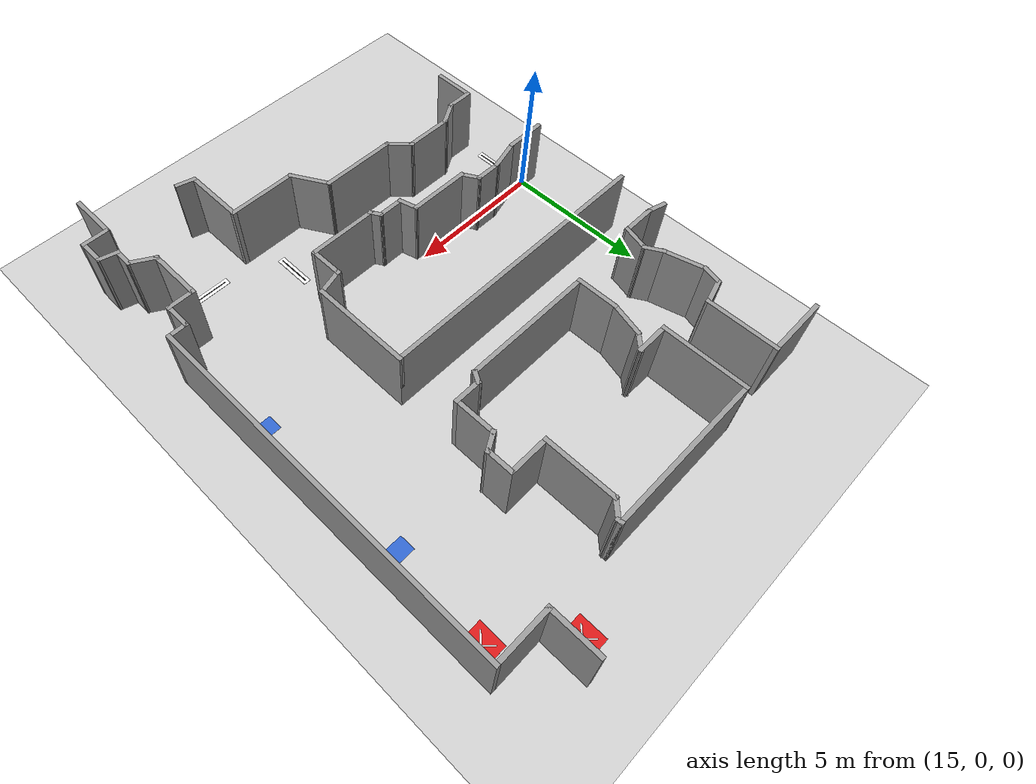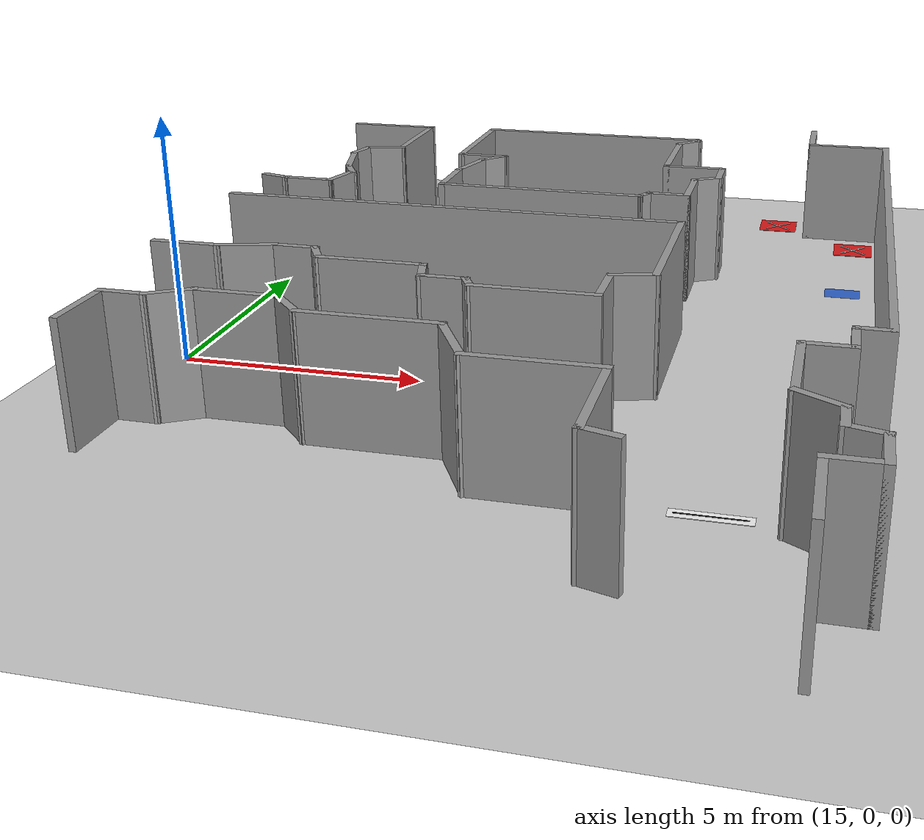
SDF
<sdf version="1.7">
 <world name="default">
  <model name="ground_plane">
   <static>1</static>
   <link name="link">
    <collision name="collision">
     <geometry><plane><normal>0 0 1</normal><size>100 100</size></plane></geometry>
     <surface>
      <contact><collide_bitmask>65535</collide_bitmask></contact>
      <friction><ode><mu>100</mu><mu2>50</mu2></ode></friction>
     </surface>
    </collision>
    <visual name="visual">
     <cast_shadows>0</cast_shadows>
     <geometry><plane><normal>0 0 1</normal><size>100 100</size></plane></geometry>
     <material>
      <script><uri>file://media/materials/scripts/gazebo.material</uri><name>Gazebo/Grey</name></script>
     </material>
    </visual>
   </link>
  </model>
  <model name="latest_world">
   <pose>-1.4911 -0.096187 0 0 -0 0</pose>
   <link name="Wall_10">
    <collision name="Wall_10_Collision">
     <geometry><box><size>1 0.15 2.5</size></box></geometry>
     <pose>0 0 1.25 0 -0 0</pose>
    </collision>
    <visual name="Wall_10_Visual">
     <pose>0 0 1.25 0 -0 0</pose>
     <geometry><box><size>1 0.15 2.5</size></box></geometry>
     <material>
      <script><uri>file://media/materials/scripts/gazebo.material</uri><name>Gazebo/Grey</name></script>
      <ambient>1 1 1 1</ambient>
     </material>
     <meta><layer>0</layer></meta>
    </visual>
    <pose>29.1732 -4.44675 0 0 -0 -0.523599</pose>
   </link>
   <link name="Wall_11">
    <collision name="Wall_11_Collision">
     <geometry><box><size>0.75 0.15 2.5</size></box></geometry>
     <pose>0 0 1.25 0 -0 0</pose>
    </collision>
    <visual name="Wall_11_Visual">
     <pose>0 0 1.25 0 -0 0</pose>
     <geometry><box><size>0.75 0.15 2.5</size></box></geometry>
     <material>
      <script><uri>file://media/materials/scripts/gazebo.material</uri><name>Gazebo/Grey</name></script>
      <ambient>1 1 1 1</ambient>
     </material>
     <meta><layer>0</layer></meta>
    </visual>
    <pose>29.5412 -4.95925 0 0 -0 -1.5708</pose>
   </link>
   <link name="Wall_12">
    <collision name="Wall_12_Collision">
     <geometry><box><size>0.75 0.15 2.5</size></box></geometry>
     <pose>0 0 1.25 0 -0 0</pose>
    </collision>
    <visual name="Wall_12_Visual">
     <pose>0 0 1.25 0 -0 0</pose>
     <geometry><box><size>0.75 0.15 2.5</size></box></geometry>
     <material>
      <script><uri>file://media/materials/scripts/gazebo.material</uri><name>Gazebo/Grey</name></script>
      <ambient>1 1 1 1</ambient>
     </material>
     <meta><layer>0</layer></meta>
    </visual>
    <pose>29.831 -5.3369 0 0 -0 -0.261799</pose>
   </link>
   <link name="Wall_13">
    <collision name="Wall_13_Collision">
     <geometry><box><size>1 0.15 2.5</size></box></geometry>
     <pose>0 0 1.25 0 -0 0</pose>
    </collision>
    <visual name="Wall_13_Visual">
     <pose>0 0 1.25 0 -0 0</pose>
     <geometry><box><size>1 0.15 2.5</size></box></geometry>
     <material>
      <script><uri>file://media/materials/scripts/gazebo.material</uri><name>Gazebo/Grey</name></script>
      <ambient>1 1 1 1</ambient>
     </material>
     <meta><layer>0</layer></meta>
    </visual>
    <pose>30.1208 -5.83954 0 0 -0 -1.5708</pose>
   </link>
   <link name="Wall_14">
    <collision name="Wall_14_Collision">
     <geometry><box><size>1 0.15 2.5</size></box></geometry>
     <pose>0 0 1.25 0 -0 0</pose>
    </collision>
    <visual name="Wall_14_Visual">
     <pose>0 0 1.25 0 -0 0</pose>
     <geometry><box><size>1 0.15 2.5</size></box></geometry>
     <material>
      <script><uri>file://media/materials/scripts/gazebo.material</uri><name>Gazebo/Grey</name></script>
      <ambient>1 1 1 1</ambient>
     </material>
     <meta><layer>0</layer></meta>
    </visual>
    <pose>29.6958 -6.26454 0 0 -0 3.14159</pose>
   </link>
   <link name="Wall_15">
    <collision name="Wall_15_Collision">
     <geometry><box><size>1.75 0.15 2.5</size></box></geometry>
     <pose>0 0 1.25 0 -0 0</pose>
    </collision>
    <visual name="Wall_15_Visual">
     <pose>0 0 1.25 0 -0 0</pose>
     <geometry><box><size>1.75 0.15 2.5</size></box></geometry>
     <material>
      <script><uri>file://media/materials/scripts/gazebo.material</uri><name>Gazebo/Grey</name></script>
      <ambient>1 1 1 1</ambient>
     </material>
     <meta><layer>0</layer></meta>
    </visual>
    <pose>29.2708 -7.06454 0 0 -0 -1.5708</pose>
   </link>
   <link name="Wall_3">
    <collision name="Wall_3_Collision">
     <geometry><box><size>1.75 0.15 2.5</size></box></geometry>
     <pose>0 0 1.25 0 -0 0</pose>
    </collision>
    <visual name="Wall_3_Visual">
     <pose>0 0 1.25 0 -0 0</pose>
     <geometry><box><size>1.75 0.15 2.5</size></box></geometry>
     <material>
      <script><uri>file://media/materials/scripts/gazebo.material</uri><name>Gazebo/Grey</name></script>
      <ambient>1 1 1 1</ambient>
     </material>
     <meta><layer>0</layer></meta>
    </visual>
    <pose>28.4051 12.1157 0 0 -0 -1.5708</pose>
   </link>
   <link name="Wall_359">
    <collision name="Wall_359_Collision">
     <geometry><box><size>0.75 0.15 2.5</size></box></geometry>
     <pose>0 0 1.25 0 -0 0</pose>
    </collision>
    <visual name="Wall_359_Visual">
     <pose>0 0 1.25 0 -0 0</pose>
     <geometry><box><size>0.75 0.15 2.5</size></box></geometry>
     <material>
      <script><uri>file://media/materials/scripts/gazebo.material</uri><name>Gazebo/Grey</name></script>
      <ambient>1 1 1 1</ambient>
     </material>
     <meta><layer>0</layer></meta>
    </visual>
    <pose>16.2347 5.35009 0 0 -0 -0.261799</pose>
   </link>
   <link name="Wall_360">
    <collision name="Wall_360_Collision">
     <geometry><box><size>1.25 0.15 2.5</size></box></geometry>
     <pose>0 0 1.25 0 -0 0</pose>
    </collision>
    <visual name="Wall_360_Visual">
     <pose>0 0 1.25 0 -0 0</pose>
     <geometry><box><size>1.25 0.15 2.5</size></box></geometry>
     <material>
      <script><uri>file://media/materials/scripts/gazebo.material</uri><name>Gazebo/Grey</name></script>
      <ambient>1 1 1 1</ambient>
     </material>
     <meta><layer>0</layer></meta>
    </visual>
    <pose>17.0744 5.27244 0 0 -0 0</pose>
   </link>
   <link name="Wall_361">
    <collision name="Wall_361_Collision">
     <geometry><box><size>1 0.15 2.5</size></box></geometry>
     <pose>0 0 1.25 0 -0 0</pose>
    </collision>
    <visual name="Wall_361_Visual">
     <pose>0 0 1.25 0 -0 0</pose>
     <geometry><box><size>1 0.15 2.5</size></box></geometry>
     <material>
      <script><uri>file://media/materials/scripts/gazebo.material</uri><name>Gazebo/Grey</name></script>
      <ambient>1 1 1 1</ambient>
     </material>
     <meta><layer>0</layer></meta>
    </visual>
    <pose>17.7344 5.68296 0 0 -0 1.309</pose>
   </link>
   <link name="Wall_362">
    <collision name="Wall_362_Collision">
     <geometry><box><size>0.75 0.15 2.5</size></box></geometry>
     <pose>0 0 1.25 0 -0 0</pose>
    </collision>
    <visual name="Wall_362_Visual">
     <pose>0 0 1.25 0 -0 0</pose>
     <geometry><box><size>0.75 0.15 2.5</size></box></geometry>
     <material>
      <script><uri>file://media/materials/scripts/gazebo.material</uri><name>Gazebo/Grey</name></script>
      <ambient>1 1 1 1</ambient>
     </material>
     <meta><layer>0</layer></meta>
    </visual>
    <pose>17.6944 6.35329 0 0 -0 2.0944</pose>
   </link>
   <link name="Wall_363">
    <collision name="Wall_363_Collision">
     <geometry><box><size>1.5 0.15 2.5</size></box></geometry>
     <pose>0 0 1.25 0 -0 0</pose>
    </collision>
    <visual name="Wall_363_Visual">
     <pose>0 0 1.25 0 -0 0</pose>
     <geometry><box><size>1.5 0.15 2.5</size></box></geometry>
     <material>
      <script><uri>file://media/materials/scripts/gazebo.material</uri><name>Gazebo/Grey</name></script>
      <ambient>1 1 1 1</ambient>
     </material>
     <meta><layer>0</layer></meta>
    </visual>
    <pose>17.3697 7.26509 0 0 -0 1.8326</pose>
   </link>
   <link name="Wall_364">
    <collision name="Wall_364_Collision">
     <geometry><box><size>0.75 0.15 2.5</size></box></geometry>
     <pose>0 0 1.25 0 -0 0</pose>
    </collision>
    <visual name="Wall_364_Visual">
     <pose>0 0 1.25 0 -0 0</pose>
     <geometry><box><size>0.75 0.15 2.5</size></box></geometry>
     <material>
      <script><uri>file://media/materials/scripts/gazebo.material</uri><name>Gazebo/Grey</name></script>
      <ambient>1 1 1 1</ambient>
     </material>
     <meta><layer>0</layer></meta>
    </visual>
    <pose>17.2727 8.20687 0 0 -0 1.309</pose>
   </link>
   <link name="Wall_365">
    <collision name="Wall_365_Collision">
     <geometry><box><size>1 0.15 2.5</size></box></geometry>
     <pose>0 0 1.25 0 -0 0</pose>
    </collision>
    <visual name="Wall_365_Visual">
     <pose>0 0 1.25 0 -0 0</pose>
     <geometry><box><size>1 0.15 2.5</size></box></geometry>
     <material>
      <script><uri>file://media/materials/scripts/gazebo.material</uri><name>Gazebo/Grey</name></script>
      <ambient>1 1 1 1</ambient>
     </material>
     <meta><layer>0</layer></meta>
    </visual>
    <pose>17.7608 8.60665 0 0 -0 0.261799</pose>
   </link>
   <link name="Wall_366">
    <collision name="Wall_366_Collision">
     <geometry><box><size>2.5 0.15 2.5</size></box></geometry>
     <pose>0 0 1.25 0 -0 0</pose>
    </collision>
    <visual name="Wall_366_Visual">
     <pose>0 0 1.25 0 -0 0</pose>
     <geometry><box><size>2.5 0.15 2.5</size></box></geometry>
     <material>
      <script><uri>file://media/materials/scripts/gazebo.material</uri><name>Gazebo/Grey</name></script>
      <ambient>1 1 1 1</ambient>
     </material>
     <meta><layer>0</layer></meta>
    </visual>
    <pose>18.1713 9.89165 0 0 -0 1.5708</pose>
   </link>
   <link name="Wall_367">
    <collision name="Wall_367_Collision">
     <geometry><box><size>2.25 0.15 2.5</size></box></geometry>
     <pose>0 0 1.25 0 -0 0</pose>
    </collision>
    <visual name="Wall_367_Visual">
     <pose>0 0 1.25 0 -0 0</pose>
     <geometry><box><size>2.25 0.15 2.5</size></box></geometry>
     <material>
      <script><uri>file://media/materials/scripts/gazebo.material</uri><name>Gazebo/Grey</name></script>
      <ambient>1 1 1 1</ambient>
     </material>
     <meta><layer>0</layer></meta>
    </visual>
    <pose>17.1213 11.0666 0 0 -0 3.14159</pose>
   </link>
   <link name="Wall_372">
    <collision name="Wall_372_Collision">
     <geometry><box><size>5.75 0.15 2.5</size></box></geometry>
     <pose>0 0 1.25 0 -0 0</pose>
    </collision>
    <visual name="Wall_372_Visual">
     <pose>0 0 1.25 0 -0 0</pose>
     <geometry><box><size>5.75 0.15 2.5</size></box></geometry>
     <material>
      <script><uri>file://media/materials/scripts/gazebo.material</uri><name>Gazebo/Grey</name></script>
      <ambient>1 1 1 1</ambient>
     </material>
     <meta><layer>0</layer></meta>
    </visual>
    <pose>22.6914 11.1934 0 0 -0 0</pose>
   </link>
   <link name="Wall_373">
    <collision name="Wall_373_Collision">
     <geometry><box><size>0.25 0.15 2.5</size></box></geometry>
     <pose>0 0 1.25 0 -0 0</pose>
    </collision>
    <visual name="Wall_373_Visual">
     <pose>0 0 1.25 0 -0 0</pose>
     <geometry><box><size>0.25 0.15 2.5</size></box></geometry>
     <material>
      <script><uri>file://media/materials/scripts/gazebo.material</uri><name>Gazebo/Grey</name></script>
      <ambient>1 1 1 1</ambient>
     </material>
     <meta><layer>0</layer></meta>
    </visual>
    <pose>25.4914 11.1434 0 0 -0 -1.5708</pose>
   </link>
   <link name="Wall_374">
    <collision name="Wall_374_Collision">
     <geometry><box><size>0.75 0.15 2.5</size></box></geometry>
     <pose>0 0 1.25 0 -0 0</pose>
    </collision>
    <visual name="Wall_374_Visual">
     <pose>0 0 1.25 0 -0 0</pose>
     <geometry><box><size>0.75 0.15 2.5</size></box></geometry>
     <material>
      <script><uri>file://media/materials/scripts/gazebo.material</uri><name>Gazebo/Grey</name></script>
      <ambient>1 1 1 1</ambient>
     </material>
     <meta><layer>0</layer></meta>
    </visual>
    <pose>25.2792 10.8813 0 0 -0 -2.35619</pose>
   </link>
   <link name="Wall_375">
    <collision name="Wall_375_Collision">
     <geometry><box><size>2.5 0.15 2.5</size></box></geometry>
     <pose>0 0 1.25 0 -0 0</pose>
    </collision>
    <visual name="Wall_375_Visual">
     <pose>0 0 1.25 0 -0 0</pose>
     <geometry><box><size>2.5 0.15 2.5</size></box></geometry>
     <material>
      <script><uri>file://media/materials/scripts/gazebo.material</uri><name>Gazebo/Grey</name></script>
      <ambient>1 1 1 1</ambient>
     </material>
     <meta><layer>0</layer></meta>
    </visual>
    <pose>25.0671 9.49415 0 0 -0 -1.5708</pose>
   </link>
   <link name="Wall_376">
    <collision name="Wall_376_Collision">
     <geometry><box><size>1.5 0.15 2.5</size></box></geometry>
     <pose>0 0 1.25 0 -0 0</pose>
    </collision>
    <visual name="Wall_376_Visual">
     <pose>0 0 1.25 0 -0 0</pose>
     <geometry><box><size>1.5 0.15 2.5</size></box></geometry>
     <material>
      <script><uri>file://media/materials/scripts/gazebo.material</uri><name>Gazebo/Grey</name></script>
      <ambient>1 1 1 1</ambient>
     </material>
     <meta><layer>0</layer></meta>
    </visual>
    <pose>25.7421 8.31915 0 0 -0 0</pose>
   </link>
   <link name="Wall_377">
    <collision name="Wall_377_Collision">
     <geometry><box><size>1 0.15 2.5</size></box></geometry>
     <pose>0 0 1.25 0 -0 0</pose>
    </collision>
    <visual name="Wall_377_Visual">
     <pose>0 0 1.25 0 -0 0</pose>
     <geometry><box><size>1 0.15 2.5</size></box></geometry>
     <material>
      <script><uri>file://media/materials/scripts/gazebo.material</uri><name>Gazebo/Grey</name></script>
      <ambient>1 1 1 1</ambient>
     </material>
     <meta><layer>0</layer></meta>
    </visual>
    <pose>26.4171 7.89415 0 0 -0 -1.5708</pose>
   </link>
   <link name="Wall_378">
    <collision name="Wall_378_Collision">
     <geometry><box><size>0.75 0.15 2.5</size></box></geometry>
     <pose>0 0 1.25 0 -0 0</pose>
    </collision>
    <visual name="Wall_378_Visual">
     <pose>0 0 1.25 0 -0 0</pose>
     <geometry><box><size>0.75 0.15 2.5</size></box></geometry>
     <material>
      <script><uri>file://media/materials/scripts/gazebo.material</uri><name>Gazebo/Grey</name></script>
      <ambient>1 1 1 1</ambient>
     </material>
     <meta><layer>0</layer></meta>
    </visual>
    <pose>26.1573 7.31915 0 0 -0 -2.61799</pose>
   </link>
   <link name="Wall_379">
    <collision name="Wall_379_Collision">
     <geometry><box><size>1.5 0.15 2.5</size></box></geometry>
     <pose>0 0 1.25 0 -0 0</pose>
    </collision>
    <visual name="Wall_379_Visual">
     <pose>0 0 1.25 0 -0 0</pose>
     <geometry><box><size>1.5 0.15 2.5</size></box></geometry>
     <material>
      <script><uri>file://media/materials/scripts/gazebo.material</uri><name>Gazebo/Grey</name></script>
      <ambient>1 1 1 1</ambient>
     </material>
     <meta><layer>0</layer></meta>
    </visual>
    <pose>25.8975 6.49415 0 0 -0 -1.5708</pose>
   </link>
   <link name="Wall_380">
    <collision name="Wall_380_Collision">
     <geometry><box><size>1 0.15 2.5</size></box></geometry>
     <pose>0 0 1.25 0 -0 0</pose>
    </collision>
    <visual name="Wall_380_Visual">
     <pose>0 0 1.25 0 -0 0</pose>
     <geometry><box><size>1 0.15 2.5</size></box></geometry>
     <material>
      <script><uri>file://media/materials/scripts/gazebo.material</uri><name>Gazebo/Grey</name></script>
      <ambient>1 1 1 1</ambient>
     </material>
     <meta><layer>0</layer></meta>
    </visual>
    <pose>25.4725 5.81915 0 0 -0 3.14159</pose>
   </link>
   <link name="Wall_381">
    <collision name="Wall_381_Collision">
     <geometry><box><size>0.5 0.15 2.5</size></box></geometry>
     <pose>0 0 1.25 0 -0 0</pose>
    </collision>
    <visual name="Wall_381_Visual">
     <pose>0 0 1.25 0 -0 0</pose>
     <geometry><box><size>0.5 0.15 2.5</size></box></geometry>
     <material>
      <script><uri>file://media/materials/scripts/gazebo.material</uri><name>Gazebo/Grey</name></script>
      <ambient>1 1 1 1</ambient>
     </material>
     <meta><layer>0</layer></meta>
    </visual>
    <pose>24.96 5.66759 0 0 -0 -2.0944</pose>
   </link>
   <link name="Wall_382">
    <collision name="Wall_382_Collision">
     <geometry><box><size>4.75 0.15 2.5</size></box></geometry>
     <pose>0 0 1.25 0 -0 0</pose>
    </collision>
    <visual name="Wall_382_Visual">
     <pose>0 0 1.25 0 -0 0</pose>
     <geometry><box><size>4.75 0.15 2.5</size></box></geometry>
     <material>
      <script><uri>file://media/materials/scripts/gazebo.material</uri><name>Gazebo/Grey</name></script>
      <ambient>1 1 1 1</ambient>
     </material>
     <meta><layer>0</layer></meta>
    </visual>
    <pose>22.5725 5.51604 0 0 -0 3.14159</pose>
   </link>
   <link name="Wall_383">
    <collision name="Wall_383_Collision">
     <geometry><box><size>1.5 0.15 2.5</size></box></geometry>
     <pose>0 0 1.25 0 -0 0</pose>
    </collision>
    <visual name="Wall_383_Visual">
     <pose>0 0 1.25 0 -0 0</pose>
     <geometry><box><size>1.5 0.15 2.5</size></box></geometry>
     <material>
      <script><uri>file://media/materials/scripts/gazebo.material</uri><name>Gazebo/Grey</name></script>
      <ambient>1 1 1 1</ambient>
     </material>
     <meta><layer>0</layer></meta>
    </visual>
    <pose>20.2725 6.19104 0 0 -0 1.5708</pose>
   </link>
   <link name="Wall_384">
    <collision name="Wall_384_Collision">
     <geometry><box><size>1.25 0.15 2.5</size></box></geometry>
     <pose>0 0 1.25 0 -0 0</pose>
    </collision>
    <visual name="Wall_384_Visual">
     <pose>0 0 1.25 0 -0 0</pose>
     <geometry><box><size>1.25 0.15 2.5</size></box></geometry>
     <material>
      <script><uri>file://media/materials/scripts/gazebo.material</uri><name>Gazebo/Grey</name></script>
      <ambient>1 1 1 1</ambient>
     </material>
     <meta><layer>0</layer></meta>
    </visual>
    <pose>20.4148 7.3973 0 0 -0 1.309</pose>
   </link>
   <link name="Wall_385">
    <collision name="Wall_385_Collision">
     <geometry><box><size>0.75 0.15 2.5</size></box></geometry>
     <pose>0 0 1.25 0 -0 0</pose>
    </collision>
    <visual name="Wall_385_Visual">
     <pose>0 0 1.25 0 -0 0</pose>
     <geometry><box><size>0.75 0.15 2.5</size></box></geometry>
     <material>
      <script><uri>file://media/materials/scripts/gazebo.material</uri><name>Gazebo/Grey</name></script>
      <ambient>1 1 1 1</ambient>
     </material>
     <meta><layer>0</layer></meta>
    </visual>
    <pose>20.7693 8.14069 0 0 -0 0.785398</pose>
   </link>
   <link name="Wall_386">
    <collision name="Wall_386_Collision">
     <geometry><box><size>1.25 0.15 2.5</size></box></geometry>
     <pose>0 0 1.25 0 -0 0</pose>
    </collision>
    <visual name="Wall_386_Visual">
     <pose>0 0 1.25 0 -0 0</pose>
     <geometry><box><size>1.25 0.15 2.5</size></box></geometry>
     <material>
      <script><uri>file://media/materials/scripts/gazebo.material</uri><name>Gazebo/Grey</name></script>
      <ambient>1 1 1 1</ambient>
     </material>
     <meta><layer>0</layer></meta>
    </visual>
    <pose>20.4314 8.35282 0 0 -0 3.14159</pose>
   </link>
   <link name="Wall_387">
    <collision name="Wall_387_Collision">
     <geometry><box><size>2.99061 0.15 2.5</size></box></geometry>
     <pose>0 0 1.25 0 -0 0</pose>
    </collision>
    <visual name="Wall_387_Visual">
     <pose>0 0 1.25 0 -0 0</pose>
     <geometry><box><size>2.99061 0.15 2.5</size></box></geometry>
     <material>
      <script><uri>file://media/materials/scripts/gazebo.material</uri><name>Gazebo/Grey</name></script>
      <ambient>1 1 1 1</ambient>
     </material>
     <meta><layer>0</layer></meta>
    </visual>
    <pose>19.8864 9.77312 0 0 -0 1.56731</pose>
   </link>
   <link name="Wall_389">
    <collision name="Wall_389_Collision">
     <geometry><box><size>10.25 0.15 2.5</size></box></geometry>
     <pose>0 0 1.25 0 -0 0</pose>
    </collision>
    <visual name="Wall_389_Visual">
     <pose>0 0 1.25 0 -0 0</pose>
     <geometry><box><size>10.25 0.15 2.5</size></box></geometry>
     <material>
      <script><uri>file://media/materials/scripts/gazebo.material</uri><name>Gazebo/Grey</name></script>
      <ambient>1 1 1 1</ambient>
     </material>
     <meta><layer>0</layer></meta>
    </visual>
    <pose>21.0071 3.70224 0 0 -0 0</pose>
   </link>
   <link name="Wall_390">
    <collision name="Wall_390_Collision">
     <geometry><box><size>3.5 0.15 2.5</size></box></geometry>
     <pose>0 0 1.25 0 -0 0</pose>
    </collision>
    <visual name="Wall_390_Visual">
     <pose>0 0 1.25 0 -0 0</pose>
     <geometry><box><size>3.5 0.15 2.5</size></box></geometry>
     <material>
      <script><uri>file://media/materials/scripts/gazebo.material</uri><name>Gazebo/Grey</name></script>
      <ambient>1 1 1 1</ambient>
     </material>
     <meta><layer>0</layer></meta>
    </visual>
    <pose>26.0571 2.02724 0 0 -0 -1.5708</pose>
   </link>
   <link name="Wall_391">
    <collision name="Wall_391_Collision">
     <geometry><box><size>1 0.15 2.5</size></box></geometry>
     <pose>0 0 1.25 0 -0 0</pose>
    </collision>
    <visual name="Wall_391_Visual">
     <pose>0 0 1.25 0 -0 0</pose>
     <geometry><box><size>1 0.15 2.5</size></box></geometry>
     <material>
      <script><uri>file://media/materials/scripts/gazebo.material</uri><name>Gazebo/Grey</name></script>
      <ambient>1 1 1 1</ambient>
     </material>
     <meta><layer>0</layer></meta>
    </visual>
    <pose>25.6466 0.242239 0 0 -0 -2.87979</pose>
   </link>
   <link name="Wall_392">
    <collision name="Wall_392_Collision">
     <geometry><box><size>1.25 0.15 2.5</size></box></geometry>
     <pose>0 0 1.25 0 -0 0</pose>
    </collision>
    <visual name="Wall_392_Visual">
     <pose>0 0 1.25 0 -0 0</pose>
     <geometry><box><size>1.25 0.15 2.5</size></box></geometry>
     <material>
      <script><uri>file://media/materials/scripts/gazebo.material</uri><name>Gazebo/Grey</name></script>
      <ambient>1 1 1 1</ambient>
     </material>
     <meta><layer>0</layer></meta>
    </visual>
    <pose>25.2361 -0.417759 0 0 -0 -1.5708</pose>
   </link>
   <link name="Wall_393">
    <collision name="Wall_393_Collision">
     <geometry><box><size>2.5 0.15 2.5</size></box></geometry>
     <pose>0 0 1.25 0 -0 0</pose>
    </collision>
    <visual name="Wall_393_Visual">
     <pose>0 0 1.25 0 -0 0</pose>
     <geometry><box><size>2.5 0.15 2.5</size></box></geometry>
     <material>
      <script><uri>file://media/materials/scripts/gazebo.material</uri><name>Gazebo/Grey</name></script>
      <ambient>1 1 1 1</ambient>
     </material>
     <meta><layer>0</layer></meta>
    </visual>
    <pose>24.0611 -0.967759 0 0 -0 3.14159</pose>
   </link>
   <link name="Wall_394">
    <collision name="Wall_394_Collision">
     <geometry><box><size>0.5 0.15 2.5</size></box></geometry>
     <pose>0 0 1.25 0 -0 0</pose>
    </collision>
    <visual name="Wall_394_Visual">
     <pose>0 0 1.25 0 -0 0</pose>
     <geometry><box><size>0.5 0.15 2.5</size></box></geometry>
     <material>
      <script><uri>file://media/materials/scripts/gazebo.material</uri><name>Gazebo/Grey</name></script>
      <ambient>1 1 1 1</ambient>
     </material>
     <meta><layer>0</layer></meta>
    </visual>
    <pose>22.7986 -0.816204 0 0 -0 2.0944</pose>
   </link>
   <link name="Wall_395">
    <collision name="Wall_395_Collision">
     <geometry><box><size>1 0.15 2.5</size></box></geometry>
     <pose>0 0 1.25 0 -0 0</pose>
    </collision>
    <visual name="Wall_395_Visual">
     <pose>0 0 1.25 0 -0 0</pose>
     <geometry><box><size>1 0.15 2.5</size></box></geometry>
     <material>
      <script><uri>file://media/materials/scripts/gazebo.material</uri><name>Gazebo/Grey</name></script>
      <ambient>1 1 1 1</ambient>
     </material>
     <meta><layer>0</layer></meta>
    </visual>
    <pose>22.2861 -0.66465 0 0 -0 3.14159</pose>
   </link>
   <link name="Wall_396">
    <collision name="Wall_396_Collision">
     <geometry><box><size>0.75 0.15 2.5</size></box></geometry>
     <pose>0 0 1.25 0 -0 0</pose>
    </collision>
    <visual name="Wall_396_Visual">
     <pose>0 0 1.25 0 -0 0</pose>
     <geometry><box><size>0.75 0.15 2.5</size></box></geometry>
     <material>
      <script><uri>file://media/materials/scripts/gazebo.material</uri><name>Gazebo/Grey</name></script>
      <ambient>1 1 1 1</ambient>
     </material>
     <meta><layer>0</layer></meta>
    </visual>
    <pose>21.7835 -0.374872 0 0 -0 1.8326</pose>
   </link>
   <link name="Wall_397">
    <collision name="Wall_397_Collision">
     <geometry><box><size>2.25 0.15 2.5</size></box></geometry>
     <pose>0 0 1.25 0 -0 0</pose>
    </collision>
    <visual name="Wall_397_Visual">
     <pose>0 0 1.25 0 -0 0</pose>
     <geometry><box><size>2.25 0.15 2.5</size></box></geometry>
     <material>
      <script><uri>file://media/materials/scripts/gazebo.material</uri><name>Gazebo/Grey</name></script>
      <ambient>1 1 1 1</ambient>
     </material>
     <meta><layer>0</layer></meta>
    </visual>
    <pose>20.6558 -0.085094 0 0 -0 3.14159</pose>
   </link>
   <link name="Wall_398">
    <collision name="Wall_398_Collision">
     <geometry><box><size>0.75 0.15 2.5</size></box></geometry>
     <pose>0 0 1.25 0 -0 0</pose>
    </collision>
    <visual name="Wall_398_Visual">
     <pose>0 0 1.25 0 -0 0</pose>
     <geometry><box><size>0.75 0.15 2.5</size></box></geometry>
     <material>
      <script><uri>file://media/materials/scripts/gazebo.material</uri><name>Gazebo/Grey</name></script>
      <ambient>1 1 1 1</ambient>
     </material>
     <meta><layer>0</layer></meta>
    </visual>
    <pose>19.4558 0.174713 0 0 -0 2.0944</pose>
   </link>
   <link name="Wall_399">
    <collision name="Wall_399_Collision">
     <geometry><box><size>1 0.15 2.5</size></box></geometry>
     <pose>0 0 1.25 0 -0 0</pose>
    </collision>
    <visual name="Wall_399_Visual">
     <pose>0 0 1.25 0 -0 0</pose>
     <geometry><box><size>1 0.15 2.5</size></box></geometry>
     <material>
      <script><uri>file://media/materials/scripts/gazebo.material</uri><name>Gazebo/Grey</name></script>
      <ambient>1 1 1 1</ambient>
     </material>
     <meta><layer>0</layer></meta>
    </visual>
    <pose>18.8808 0.434521 0 0 -0 3.14159</pose>
   </link>
   <link name="Wall_4">
    <collision name="Wall_4_Collision">
     <geometry><box><size>2 0.15 2.5</size></box></geometry>
     <pose>0 0 1.25 0 -0 0</pose>
    </collision>
    <visual name="Wall_4_Visual">
     <pose>0 0 1.25 0 -0 0</pose>
     <geometry><box><size>2 0.15 2.5</size></box></geometry>
     <material>
      <script><uri>file://media/materials/scripts/gazebo.material</uri><name>Gazebo/Grey</name></script>
      <ambient>1 1 1 1</ambient>
     </material>
     <meta><layer>0</layer></meta>
    </visual>
    <pose>29.3301 11.3157 0 0 -0 0</pose>
   </link>
   <link name="Wall_400">
    <collision name="Wall_400_Collision">
     <geometry><box><size>1.25 0.15 2.5</size></box></geometry>
     <pose>0 0 1.25 0 -0 0</pose>
    </collision>
    <visual name="Wall_400_Visual">
     <pose>0 0 1.25 0 -0 0</pose>
     <geometry><box><size>1.25 0.15 2.5</size></box></geometry>
     <material>
      <script><uri>file://media/materials/scripts/gazebo.material</uri><name>Gazebo/Grey</name></script>
      <ambient>1 1 1 1</ambient>
     </material>
     <meta><layer>0</layer></meta>
    </visual>
    <pose>17.9246 0.292171 0 0 -0 -2.87979</pose>
   </link>
   <link name="Wall_401">
    <collision name="Wall_401_Collision">
     <geometry><box><size>1.5 0.15 2.5</size></box></geometry>
     <pose>0 0 1.25 0 -0 0</pose>
    </collision>
    <visual name="Wall_401_Visual">
     <pose>0 0 1.25 0 -0 0</pose>
     <geometry><box><size>1.5 0.15 2.5</size></box></geometry>
     <material>
      <script><uri>file://media/materials/scripts/gazebo.material</uri><name>Gazebo/Grey</name></script>
      <ambient>1 1 1 1</ambient>
     </material>
     <meta><layer>0</layer></meta>
    </visual>
    <pose>16.7183 0.14982 0 0 -0 3.14159</pose>
   </link>
   <link name="Wall_41">
    <collision name="Wall_41_Collision">
     <geometry><box><size>0.75 0.15 2.5</size></box></geometry>
     <pose>0 0 1.25 0 -0 0</pose>
    </collision>
    <visual name="Wall_41_Visual">
     <pose>0 0 1.25 0 -0 0</pose>
     <geometry><box><size>0.75 0.15 2.5</size></box></geometry>
     <material>
      <script><uri>file://media/materials/scripts/gazebo.material</uri><name>Gazebo/Grey</name></script>
      <ambient>1 1 1 1</ambient>
     </material>
     <meta><layer>0</layer></meta>
    </visual>
    <pose>26.2898 -6.22349 0 0 -0 2.87979</pose>
   </link>
   <link name="Wall_42">
    <collision name="Wall_42_Collision">
     <geometry><box><size>2.25 0.15 2.5</size></box></geometry>
     <pose>0 0 1.25 0 -0 0</pose>
    </collision>
    <visual name="Wall_42_Visual">
     <pose>0 0 1.25 0 -0 0</pose>
     <geometry><box><size>2.25 0.15 2.5</size></box></geometry>
     <material>
      <script><uri>file://media/materials/scripts/gazebo.material</uri><name>Gazebo/Grey</name></script>
      <ambient>1 1 1 1</ambient>
     </material>
     <meta><layer>0</layer></meta>
    </visual>
    <pose>26 -5.09585 0 0 -0 1.5708</pose>
   </link>
   <link name="Wall_43">
    <collision name="Wall_43_Collision">
     <geometry><box><size>2.5 0.15 2.5</size></box></geometry>
     <pose>0 0 1.25 0 -0 0</pose>
    </collision>
    <visual name="Wall_43_Visual">
     <pose>0 0 1.25 0 -0 0</pose>
     <geometry><box><size>2.5 0.15 2.5</size></box></geometry>
     <material>
      <script><uri>file://media/materials/scripts/gazebo.material</uri><name>Gazebo/Grey</name></script>
      <ambient>1 1 1 1</ambient>
     </material>
     <meta><layer>0</layer></meta>
    </visual>
    <pose>24.825 -4.04585 0 0 -0 3.14159</pose>
   </link>
   <link name="Wall_44">
    <collision name="Wall_44_Collision">
     <geometry><box><size>1.5 0.15 2.5</size></box></geometry>
     <pose>0 0 1.25 0 -0 0</pose>
    </collision>
    <visual name="Wall_44_Visual">
     <pose>0 0 1.25 0 -0 0</pose>
     <geometry><box><size>1.5 0.15 2.5</size></box></geometry>
     <material>
      <script><uri>file://media/materials/scripts/gazebo.material</uri><name>Gazebo/Grey</name></script>
      <ambient>1 1 1 1</ambient>
     </material>
     <meta><layer>0</layer></meta>
    </visual>
    <pose>23.3125 -3.46128 0 0 -0 2.0944</pose>
   </link>
   <link name="Wall_45">
    <collision name="Wall_45_Collision">
     <geometry><box><size>2.75 0.15 2.5</size></box></geometry>
     <pose>0 0 1.25 0 -0 0</pose>
    </collision>
    <visual name="Wall_45_Visual">
     <pose>0 0 1.25 0 -0 0</pose>
     <geometry><box><size>2.75 0.15 2.5</size></box></geometry>
     <material>
      <script><uri>file://media/materials/scripts/gazebo.material</uri><name>Gazebo/Grey</name></script>
      <ambient>1 1 1 1</ambient>
     </material>
     <meta><layer>0</layer></meta>
    </visual>
    <pose>21.675 -2.87671 0 0 -0 3.14159</pose>
   </link>
   <link name="Wall_46">
    <collision name="Wall_46_Collision">
     <geometry><box><size>1 0.15 2.5</size></box></geometry>
     <pose>0 0 1.25 0 -0 0</pose>
    </collision>
    <visual name="Wall_46_Visual">
     <pose>0 0 1.25 0 -0 0</pose>
     <geometry><box><size>1 0.15 2.5</size></box></geometry>
     <material>
      <script><uri>file://media/materials/scripts/gazebo.material</uri><name>Gazebo/Grey</name></script>
      <ambient>1 1 1 1</ambient>
     </material>
     <meta><layer>0</layer></meta>
    </visual>
    <pose>20.0745 -2.57619 0 0 -0 2.35619</pose>
   </link>
   <link name="Wall_47">
    <collision name="Wall_47_Collision">
     <geometry><box><size>1.75 0.15 2.5</size></box></geometry>
     <pose>0 0 1.25 0 -0 0</pose>
    </collision>
    <visual name="Wall_47_Visual">
     <pose>0 0 1.25 0 -0 0</pose>
     <geometry><box><size>1.75 0.15 2.5</size></box></geometry>
     <material>
      <script><uri>file://media/materials/scripts/gazebo.material</uri><name>Gazebo/Grey</name></script>
      <ambient>1 1 1 1</ambient>
     </material>
     <meta><layer>0</layer></meta>
    </visual>
    <pose>18.974 -2.27567 0 0 -0 3.14159</pose>
   </link>
   <link name="Wall_48">
    <collision name="Wall_48_Collision">
     <geometry><box><size>1 0.15 2.5</size></box></geometry>
     <pose>0 0 1.25 0 -0 0</pose>
    </collision>
    <visual name="Wall_48_Visual">
     <pose>0 0 1.25 0 -0 0</pose>
     <geometry><box><size>1 0.15 2.5</size></box></geometry>
     <material>
      <script><uri>file://media/materials/scripts/gazebo.material</uri><name>Gazebo/Grey</name></script>
      <ambient>1 1 1 1</ambient>
     </material>
     <meta><layer>0</layer></meta>
    </visual>
    <pose>17.8059 -2.48817 0 0 -0 -2.61799</pose>
   </link>
   <link name="Wall_49">
    <collision name="Wall_49_Collision">
     <geometry><box><size>1 0.15 2.5</size></box></geometry>
     <pose>0 0 1.25 0 -0 0</pose>
    </collision>
    <visual name="Wall_49_Visual">
     <pose>0 0 1.25 0 -0 0</pose>
     <geometry><box><size>1 0.15 2.5</size></box></geometry>
     <material>
      <script><uri>file://media/materials/scripts/gazebo.material</uri><name>Gazebo/Grey</name></script>
      <ambient>1 1 1 1</ambient>
     </material>
     <meta><layer>0</layer></meta>
    </visual>
    <pose>17.0128 -2.70067 0 0 -0 3.14159</pose>
   </link>
   <link name="Wall_5">
    <collision name="Wall_5_Collision">
     <geometry><box><size>13 0.15 2.5</size></box></geometry>
     <pose>0 0 1.25 0 -0 0</pose>
    </collision>
    <visual name="Wall_5_Visual">
     <pose>0 0 1.25 0 -0 0</pose>
     <geometry><box><size>13 0.15 2.5</size></box></geometry>
     <material>
      <script><uri>file://media/materials/scripts/gazebo.material</uri><name>Gazebo/Grey</name></script>
      <ambient>1 1 1 1</ambient>
     </material>
     <meta><layer>0</layer></meta>
    </visual>
    <pose>30.2551 4.89075 0 0 -0 -1.5708</pose>
   </link>
   <link name="Wall_50">
    <collision name="Wall_50_Collision">
     <geometry><box><size>1.5 0.15 2.5</size></box></geometry>
     <pose>0 0 1.25 0 -0 0</pose>
    </collision>
    <visual name="Wall_50_Visual">
     <pose>0 0 1.25 0 -0 0</pose>
     <geometry><box><size>1.5 0.15 2.5</size></box></geometry>
     <material>
      <script><uri>file://media/materials/scripts/gazebo.material</uri><name>Gazebo/Grey</name></script>
      <ambient>1 1 1 1</ambient>
     </material>
     <meta><layer>0</layer></meta>
    </visual>
    <pose>16.5878 -3.37567 0 0 -0 -1.5708</pose>
   </link>
   <link name="Wall_6">
    <collision name="Wall_6_Collision">
     <geometry><box><size>0.75 0.15 2.5</size></box></geometry>
     <pose>0 0 1.25 0 -0 0</pose>
    </collision>
    <visual name="Wall_6_Visual">
     <pose>0 0 1.25 0 -0 0</pose>
     <geometry><box><size>0.75 0.15 2.5</size></box></geometry>
     <material>
      <script><uri>file://media/materials/scripts/gazebo.material</uri><name>Gazebo/Grey</name></script>
      <ambient>1 1 1 1</ambient>
     </material>
     <meta><layer>0</layer></meta>
    </visual>
    <pose>29.9551 -1.53425 0 0 -0 3.14159</pose>
   </link>
   <link name="Wall_7">
    <collision name="Wall_7_Collision">
     <geometry><box><size>1 0.15 2.5</size></box></geometry>
     <pose>0 0 1.25 0 -0 0</pose>
    </collision>
    <visual name="Wall_7_Visual">
     <pose>0 0 1.25 0 -0 0</pose>
     <geometry><box><size>1 0.15 2.5</size></box></geometry>
     <material>
      <script><uri>file://media/materials/scripts/gazebo.material</uri><name>Gazebo/Grey</name></script>
      <ambient>1 1 1 1</ambient>
     </material>
     <meta><layer>0</layer></meta>
    </visual>
    <pose>29.6551 -1.95925 0 0 -0 -1.5708</pose>
   </link>
   <link name="Wall_8">
    <collision name="Wall_8_Collision">
     <geometry><box><size>1 0.15 2.5</size></box></geometry>
     <pose>0 0 1.25 0 -0 0</pose>
    </collision>
    <visual name="Wall_8_Visual">
     <pose>0 0 1.25 0 -0 0</pose>
     <geometry><box><size>1 0.15 2.5</size></box></geometry>
     <material>
      <script><uri>file://media/materials/scripts/gazebo.material</uri><name>Gazebo/Grey</name></script>
      <ambient>1 1 1 1</ambient>
     </material>
     <meta><layer>0</layer></meta>
    </visual>
    <pose>29.2301 -2.38425 0 0 -0 3.14159</pose>
   </link>
   <link name="Wall_9">
    <collision name="Wall_9_Collision">
     <geometry><box><size>2 0.15 2.5</size></box></geometry>
     <pose>0 0 1.25 0 -0 0</pose>
    </collision>
    <visual name="Wall_9_Visual">
     <pose>0 0 1.25 0 -0 0</pose>
     <geometry><box><size>2 0.15 2.5</size></box></geometry>
     <material>
      <script><uri>file://media/materials/scripts/gazebo.material</uri><name>Gazebo/Grey</name></script>
      <ambient>1 1 1 1</ambient>
     </material>
     <meta><layer>0</layer></meta>
    </visual>
    <pose>28.8051 -3.30925 0 0 -0 -1.5708</pose>
   </link>
   <static>1</static>
  </model>
  <model name="semantic_marker_door_8">
   <static>true</static>
   <pose>17.400 10.500 0 0 0 0.0000</pose>
   <link name="link">
    <visual name="door_patch">
     <pose>0 0 0.005 0 0 0</pose>
     <geometry><box><size>1.40 0.26 0.010</size></box></geometry>
     <material><ambient>0.96 0.96 0.96 1</ambient><diffuse>0.96 0.96 0.96 1</diffuse></material>
    </visual>
    <visual name="door_center_line">
     <pose>0 0 0.011 0 0 0</pose>
     <geometry><box><size>1.22 0.03 0.005</size></box></geometry>
     <material><ambient>0.15 0.15 0.15 1</ambient><diffuse>0.15 0.15 0.15 1</diffuse></material>
    </visual>
   </link>
  </model>
  <model name="semantic_marker_door_9">
   <static>true</static>
   <pose>26.150 -3.950 0 0 0 0.0000</pose>
   <link name="link">
    <visual name="door_patch">
     <pose>0 0 0.005 0 0 0</pose>
     <geometry><box><size>1.40 0.26 0.010</size></box></geometry>
     <material><ambient>0.96 0.96 0.96 1</ambient><diffuse>0.96 0.96 0.96 1</diffuse></material>
    </visual>
    <visual name="door_center_line">
     <pose>0 0 0.011 0 0 0</pose>
     <geometry><box><size>1.22 0.03 0.005</size></box></geometry>
     <material><ambient>0.15 0.15 0.15 1</ambient><diffuse>0.15 0.15 0.15 1</diffuse></material>
    </visual>
   </link>
  </model>
  <model name="semantic_marker_door_15">
   <static>true</static>
   <pose>15.050 -1.400 0 0 0 -1.5708</pose>
   <link name="link">
    <visual name="door_patch">
     <pose>0 0 0.005 0 0 0</pose>
     <geometry><box><size>1.40 0.26 0.010</size></box></geometry>
     <material><ambient>0.96 0.96 0.96 1</ambient><diffuse>0.96 0.96 0.96 1</diffuse></material>
    </visual>
    <visual name="door_center_line">
     <pose>0 0 0.011 0 0 0</pose>
     <geometry><box><size>1.22 0.03 0.005</size></box></geometry>
     <material><ambient>0.15 0.15 0.15 1</ambient><diffuse>0.15 0.15 0.15 1</diffuse></material>
    </visual>
   </link>
  </model>
  <model name="semantic_marker_door_16">
   <static>true</static>
   <pose>23.600 -2.700 0 0 0 -1.5708</pose>
   <link name="link">
    <visual name="door_patch">
     <pose>0 0 0.005 0 0 0</pose>
     <geometry><box><size>1.40 0.26 0.010</size></box></geometry>
     <material><ambient>0.96 0.96 0.96 1</ambient><diffuse>0.96 0.96 0.96 1</diffuse></material>
    </visual>
    <visual name="door_center_line">
     <pose>0 0 0.011 0 0 0</pose>
     <geometry><box><size>1.22 0.03 0.005</size></box></geometry>
     <material><ambient>0.15 0.15 0.15 1</ambient><diffuse>0.15 0.15 0.15 1</diffuse></material>
    </visual>
   </link>
  </model>
  <model name="semantic_marker_dead_end_3">
   <static>true</static>
   <pose>26.150 12.050 0 0 0 0.0000</pose>
   <link name="link">
    <visual name="dead_end_patch">
     <pose>0 0 0.005 0 0 0</pose>
     <geometry><box><size>0.95 0.95 0.010</size></box></geometry>
     <material><ambient>0.85 0.10 0.10 1</ambient><diffuse>0.85 0.10 0.10 1</diffuse></material>
    </visual>
    <visual name="cross_bar_a">
     <pose>0 0 0.011 0 0 0.78</pose>
     <geometry><box><size>0.83 0.05 0.005</size></box></geometry>
     <material><ambient>0.98 0.98 0.98 1</ambient><diffuse>0.98 0.98 0.98 1</diffuse></material>
    </visual>
    <visual name="cross_bar_b">
     <pose>0 0 0.011 0 0 -0.78</pose>
     <geometry><box><size>0.83 0.05 0.005</size></box></geometry>
     <material><ambient>0.98 0.98 0.98 1</ambient><diffuse>0.98 0.98 0.98 1</diffuse></material>
    </visual>
   </link>
  </model>
  <model name="semantic_marker_dead_end_4">
   <static>true</static>
   <pose>28.150 10.300 0 0 0 0.0000</pose>
   <link name="link">
    <visual name="dead_end_patch">
     <pose>0 0 0.005 0 0 0</pose>
     <geometry><box><size>0.95 0.95 0.010</size></box></geometry>
     <material><ambient>0.85 0.10 0.10 1</ambient><diffuse>0.85 0.10 0.10 1</diffuse></material>
    </visual>
    <visual name="cross_bar_a">
     <pose>0 0 0.011 0 0 0.78</pose>
     <geometry><box><size>0.83 0.05 0.005</size></box></geometry>
     <material><ambient>0.98 0.98 0.98 1</ambient><diffuse>0.98 0.98 0.98 1</diffuse></material>
    </visual>
    <visual name="cross_bar_b">
     <pose>0 0 0.011 0 0 -0.78</pose>
     <geometry><box><size>0.83 0.05 0.005</size></box></geometry>
     <material><ambient>0.98 0.98 0.98 1</ambient><diffuse>0.98 0.98 0.98 1</diffuse></material>
    </visual>
   </link>
  </model>
  <model name="semantic_marker_water_4">
   <static>true</static>
   <pose>27.950 6.950 0 0 0 0.0000</pose>
   <link name="link">
    <visual name="water_patch">
     <pose>0 0 0.005 0 0 0</pose>
     <geometry><box><size>0.80 0.55 0.010</size></box></geometry>
     <material>
      <ambient>0.10 0.35 0.85 0.82</ambient>
      <diffuse>0.10 0.35 0.85 0.82</diffuse>
      <specular>0.95 0.95 0.95 1</specular>
     </material>
    </visual>
   </link>
  </model>
  <model name="semantic_marker_water_5">
   <static>true</static>
   <pose>28.150 1.400 0 0 0 0.0000</pose>
   <link name="link">
    <visual name="water_patch">
     <pose>0 0 0.005 0 0 0</pose>
     <geometry><box><size>0.80 0.55 0.010</size></box></geometry>
     <material>
      <ambient>0.10 0.35 0.85 0.82</ambient>
      <diffuse>0.10 0.35 0.85 0.82</diffuse>
      <specular>0.95 0.95 0.95 1</specular>
     </material>
    </visual>
   </link>
  </model>
 </world>
</sdf>
